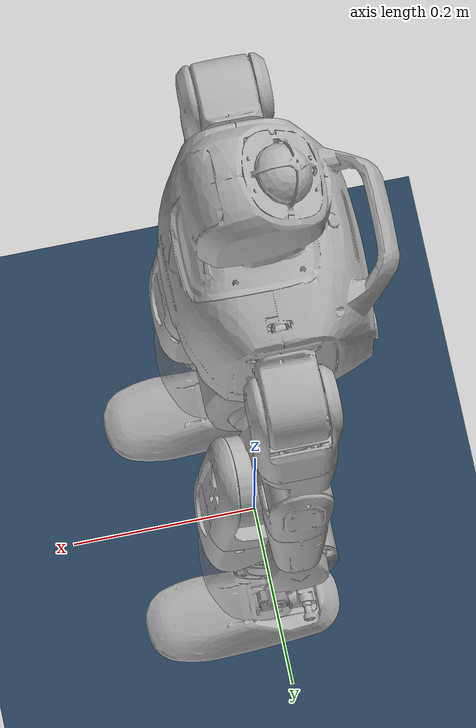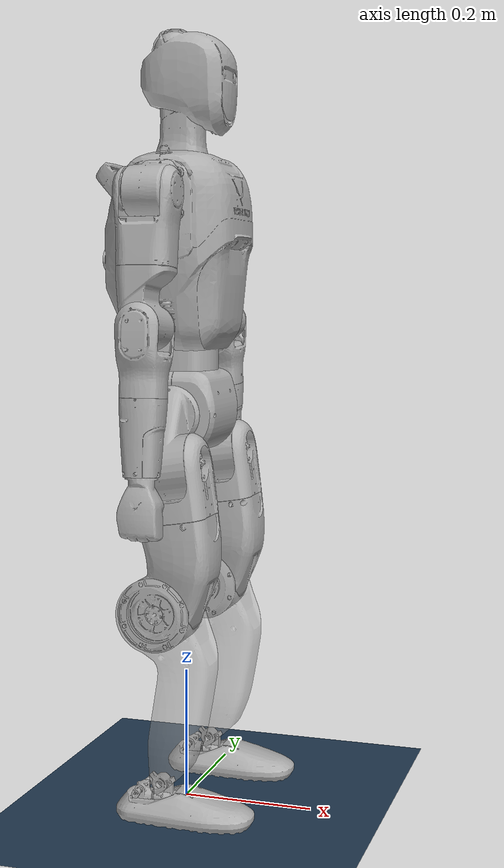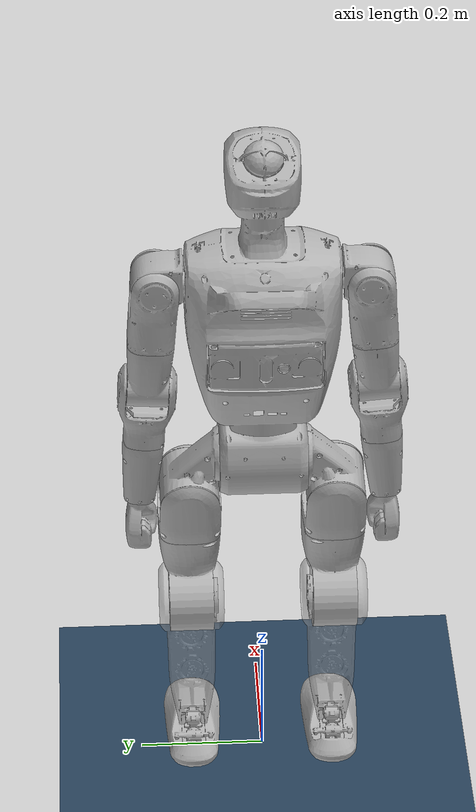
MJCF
<mujoco model="Mini_M1v3">
  <include file="Mini_M1v3.xml" />
  <statistic center="0.5 0.5 1.2" extent="1.0" />
  <visual>
    <headlight diffuse="0.6 0.6 0.6" ambient="0.3 0.3 0.3" specular="0 0 0" />
    <rgba haze="0.15 0.25 0.35 1" />
    <global azimuth="-130" elevation="-20" />
  </visual>
  <asset>
    <texture type="skybox" builtin="gradient" rgb1="0.3 0.5 0.7" rgb2="0 0 0" width="512" height="3072" />
    <texture type="2d" name="groundplane" builtin="checker" mark="edge" rgb1="0.2 0.3 0.4" rgb2="0.1 0.2 0.3" markrgb="0.8 0.8 0.8" width="300" height="300" />
    <material name="groundplane" texture="groundplane" texuniform="true" texrepeat="5 5" reflectance="0.2" />
  </asset>
  <worldbody>
    <light pos="0 0 1.5" dir="0 0 -1" directional="true" />
    <geom name="floor" size="0 0 0.05" type="plane" material="groundplane" friction="1.0 0.01 0.001" />
  </worldbody>
</mujoco>

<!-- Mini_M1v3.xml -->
<mujoco model="Mini_23dof_rev_1_0">
    <compiler angle="radian" meshdir="meshes_reduce_Lidar/" autolimits="true"/>

    <default>
        <default class="Mini1">
            <geom condim="1" contype="0" conaffinity="0"/>
            <joint damping="0.05" armature="0.01" frictionloss="0.2"/>

            <default class="hip">
                <default class="hip_pitch">
                    <joint axis="0 1 0" range="-2.674559 2.910495" actuatorfrcrange="-130 130" armature="0.063828" frictionloss="0.9"/>
                </default>
                <default class="hip_roll">
                    <joint axis="1 0 0" actuatorfrcrange="-132 132" armature="0.093956787" frictionloss="0.15"/>
                </default>
                <default class="hip_yaw">
                    <joint axis="0 0 1" range="-2.443461 2.443461" actuatorfrcrange="-70 70" armature="0.057648938" frictionloss="0.5"/>
                </default>
            </default>
            <default class="knee">
                <joint axis="0 1 0" range="-0.1919862 2.70526" actuatorfrcrange="-130 130" armature="0.063828" frictionloss="0.9"/>
            </default>
            <default class="ankle">
                <default class="ankle_pitch">
                    <joint axis="0 1 0" range="-0.8726646 0.5235988" actuatorfrcrange="-36 36" armature="0.023328" frictionloss="0.08"/>
                </default>
                <default class="ankle_roll">
                    <joint axis="1 0 0" range="-0.2617994 0.2617994" actuatorfrcrange="-36 36" armature="0.023328" frictionloss="0.08"/>
                </default>
            </default>
            <default class="waist">
                <joint axis="0 0 1" range="-2.792524 2.792524" actuatorfrcrange="-70 70" armature="0.057648938" frictionloss="0.5"/>
            </default>
            <default class="shoulder">
                <default class="shoulder_pitch">
                    <joint axis="0 1 0" range="-3.141593 2.356194" actuatorfrcrange="-36 36" armature="0.023328" frictionloss="0.08"/>
                </default>
                <default class="shoulder_roll">
                    <joint axis="1 0 0" actuatorfrcrange="-36 36" armature="0.023328" frictionloss="0.08"/>
                </default>
                <default class="shoulder_yaw">
                    <joint axis="0 0 1" range="-2.443461 2.443461" actuatorfrcrange="-36 36" armature="0.023328" frictionloss="0.08"/>
                </default>
            </default>
            <default class="elbow">
                <joint axis="0 1 0" range="-2.234021 1.570796" actuatorfrcrange="-36 36" armature="0.023328" frictionloss="0.08"/>
            </default>
            <default class="wrist">
                <default class="wrist_yaw">
                    <joint axis="0 0 1" range="-2.443461 2.443461" actuatorfrcrange="-36 36" armature="0.023328" frictionloss="0.08"/>
                </default>
            </default>

            <default class="visual">
                <geom group="2" type="mesh" density="0" material="silver" contype="0" conaffinity="0"/>
            </default>
            <default class="collision">
                <geom group="3" rgba=".2 .6 .2 .3" type="capsule" contype="1" conaffinity="1"/>
                <default class="foot_capsule">
                <geom type="capsule" size="0.007"/>
                </default>
            </default>
            <site group="5" rgba="1 0 0 1"/>
        </default>
    </default>

    <asset>
        <material name="silver" rgba="0.7 0.7 0.7 1"/>
        <material name="black" rgba="0.2 0.2 0.2 1"/>
        <material name="gold" rgba="1 0.84 0 1"/>
        <material name="red_staff" rgba="0.8 0 0 1"/>

        <mesh name="pelvis" file="pelvis_link.STL"/>

        <mesh name="left_hip_pitch_link" file="left_hip_pitch_link.STL" />
        <mesh name="left_hip_roll_link" file="left_hip_roll_link.STL" />
        <mesh name="left_hip_yaw_link" file="left_hip_yaw_link.STL" />
        <mesh name="left_knee_link" file="left_knee_link.STL" />
        <mesh name="left_ankle_pitch_link" file="left_ankle_pitch_link.STL" />
        <mesh name="left_ankle_roll_link" file="left_ankle_roll_link.STL" />

        <mesh name="right_hip_pitch_link" file="right_hip_pitch_link.STL" />
        <mesh name="right_hip_roll_link" file="right_hip_roll_link.STL" />
        <mesh name="right_hip_yaw_link" file="right_hip_yaw_link.STL" />
        <mesh name="right_knee_link" file="right_knee_link.STL" />
        <mesh name="right_ankle_pitch_link" file="right_ankle_pitch_link.STL" />
        <mesh name="right_ankle_roll_link" file="right_ankle_roll_link.STL" />

        <mesh name="torso_link" file="torso_link.STL" />
        <mesh name="left_shoulder_pitch_link" file="left_shoulder_pitch_link.STL" />
        <mesh name="left_shoulder_roll_link" file="left_shoulder_roll_link.STL" />
        <mesh name="left_shoulder_yaw_link" file="left_shoulder_yaw_link.STL" />
        <mesh name="left_elbow_link" file="left_elbow_link.STL" />
        <mesh name="left_wrist_yaw_link" file="left_wrist_yaw_link.STL"/>
        <mesh name="left_hand_link" file="left_hand_link.STL" />

        <mesh name="right_shoulder_pitch_link" file="right_shoulder_pitch_link.STL" />
        <mesh name="right_shoulder_roll_link" file="right_shoulder_roll_link.STL" />
        <mesh name="right_shoulder_yaw_link" file="right_shoulder_yaw_link.STL" />
        <mesh name="right_elbow_link" file="right_elbow_link.STL" />
        <mesh name="right_wrist_yaw_link" file="right_wrist_yaw_link.STL"/>
        <mesh name="right_hand_link" file="right_hand_link.STL" />

    </asset>

  <worldbody>
    <body name="pelvis_link" pos="0 0 0.672" childclass="Mini1" quat="1 0 0 0">
      <inertial pos="0.00197991 2.27e-06 -0.06287835" quat="0.9988767 -0.0004044356 -0.04738326 -0.0001535962" mass="3.005544" diaginertia="0.007994987 0.006372019 0.007607024" />
      <freejoint name="floating_base_joint" />
      <geom class="visual" mesh="pelvis" />
      <geom name="pelvis_collision" pos="0 0 -0.065" class="collision" type="sphere" size="0.065" />
      <site name="imu_in_pelvis" size="0.01" pos="0 0 -0.12053" />

      <body name="left_hip_pitch_link" pos="0 0.0625 -0.06475" quat="1 0 0 0">
        <inertial pos="0.01470366 0.0476278 -0.06264868" quat="0.1589684 0.9095972 0.3553892 -0.1451221" mass="1.61152939" diaginertia="0.003437672 0.00301867 0.001978658" />
        <joint name="left_hip_pitch_joint" pos="0 0 0" class="hip_pitch" />
        <geom class="visual" mesh="left_hip_pitch_link" />

        <body name="left_hip_roll_link" pos="0.011784 0.052504 -0.074055" quat="0.996889 0 -0.07881816 0">
          <inertial pos="0.00476834 -8.53e-06 -0.04522799" quat="0.8689032 -7.861597e-07 -0.494982 -5.525135e-05" mass="0.70342769" diaginertia="0.001522644 0.00168329 0.001222996" />
          <joint name="left_hip_roll_joint" pos="0 0 0" range="-0.6108652 2.268928" class="hip_roll" />
          <geom class="visual" mesh="left_hip_roll_link" />
          <geom name="left_hip_collision" class="collision" size="0.05" fromto="0.00 0.0 0.0 0.00 0.0 -0.11" />

          <body name="left_hip_yaw_link" pos="0 0 -0.085148" quat="1 0 0 0">
            <inertial pos="-0.02157799 -0.00083568 -0.0769782" quat="0.7521142 -0.1426161 -0.1833375 0.6167432" mass="2.68034203" diaginertia="0.01174214 0.01101729 0.003841335" />
            <joint name="left_hip_yaw_joint" pos="0 0 0" class="hip_yaw"/>
            <geom class="visual" mesh="left_hip_yaw_link" />
            <geom name="left_thigh_collision" pos="0.015 0.0 -0.12" euler="0 0.57 0" class="collision" type="box" size="0.005 0.03 0.05" />

            <body name="left_knee_link" pos="-0.0451 0 -0.1233" quat="0.996889 0 0.07881816 0">
              <inertial pos="0.0258151 0.00045464 -0.12061859" quat="0.9987795 0.005430901 -0.0001620425 -0.0490926" mass="2.09107016" diaginertia="0.01272096 0.01248183 0.002515513" />
              <joint name="left_knee_joint" pos="0 0 0" class="knee" />
              <geom class="visual" mesh="left_knee_link" rgba="0.7 0.7 0.7 0.5" />
              <geom name="left_knee_collision" euler="1.5707 0 0" class="collision" type="cylinder" size="0.054 0.05" />
              <geom name="left_shin_collision" class="collision" size="0.042" fromto="0.035 0.0 -0.095 0.018 0.0 -0.18" />

              <body name="left_ankle_pitch_link" pos="0 0 -0.261" quat="1 0 0 0">
                <inertial pos="0.00198317 0.0 -0.00838611" quat="0.4473806 0.5475861 0.5475861 0.4473806" mass="0.12230048" diaginertia="2.696e-05 1.272488e-05 2.316512e-05" />
                <joint name="left_ankle_pitch_joint" pos="0 0 0" class="ankle_pitch"/>
                <geom class="visual" mesh="left_ankle_pitch_link" />

                <body name="left_ankle_roll_link" pos="0 0 -0.023" quat="1 0 0 0">
                  <inertial pos="0.01931061 0.0 -0.01037183" quat="7.382304e-07 -0.680966 -2.911727e-06 -0.732315" mass="0.86300763" diaginertia="0.002582852 0.00233125 0.000438728" />
                  <joint name="left_ankle_roll_joint" pos="0 0 0" class="ankle_roll"/>
                  <geom class="visual" mesh="left_ankle_roll_link" />

                  <geom name="left_foot1_collision" class="foot_capsule" fromto="-0.042 -0.03 -0.022 0.1 -0.035 -0.022" />
                  <geom name="left_foot2_collision" class="foot_capsule" fromto="-0.05 -0.027 -0.022 0.12 -0.027 -0.022" />
                  <geom name="left_foot3_collision" class="foot_capsule" fromto="-0.056 -0.018 -0.022 0.128 -0.018 -0.022" />
                  <geom name="left_foot4_collision" class="foot_capsule" fromto="-0.06 -0.009 -0.022 0.132 -0.009 -0.022" />
                  <geom name="left_foot5_collision" class="foot_capsule" fromto="-0.06 0.0 -0.022 0.132 0.0 -0.022" />
                  <geom name="left_foot6_collision" class="foot_capsule" fromto="-0.06 0.009 -0.022 0.131 0.009 -0.022" />
                  <geom name="left_foot7_collision" class="foot_capsule" fromto="-0.056 0.018 -0.022 0.128 0.018 -0.022" />
                  <geom name="left_foot8_collision" class="foot_capsule" fromto="-0.05 0.027 -0.022 0.12 0.027 -0.022" />
                  <geom name="left_foot9_collision" class="foot_capsule" fromto="-0.042 0.03 -0.022 0.1 0.035 -0.022" />

                </body>
              </body>
            </body>
          </body>
        </body>
      </body>

      <body name="right_hip_pitch_link" pos="0 -0.0625 -0.06475" quat="1 0 0 0">
        <inertial pos="0.01469242 -0.0476432 -0.06259392" quat="0.9093419 0.1575725 0.1456894 -0.3564306" mass="1.61230743" diaginertia="0.003441187 0.003024699 0.001977264" />
        <joint name="right_hip_pitch_joint" pos="0 0 0" class="hip_pitch"/>
        <geom class="visual" mesh="right_hip_pitch_link" />

        <body name="right_hip_roll_link" pos="0.011784 -0.052504 -0.074055" quat="0.996889 0 -0.07881816 0">
          <inertial pos="0.00476833 -8.53e-06 -0.04522799" quat="0.8689032 -7.861597e-07 -0.494982 -5.525135e-05" mass="0.70342769" diaginertia="0.001522644 0.00168329 0.001222996" />
          <joint name="right_hip_roll_joint" pos="0 0 0" range="-2.268928 0.5235988" class="hip_roll"/>
          <geom class="visual" mesh="right_hip_roll_link" />
          <geom name="right_hip_collision" class="collision" size="0.05" fromto="0.00 0.0 0.0 0.00 0.0 -0.11" />

          <body name="right_hip_yaw_link" pos="0 0 -0.085148" quat="1 0 0 0">
            <inertial pos="-0.02154921 0.00092456 -0.07699345" quat="0.6279133 -0.1805896 -0.1456576 0.7428972" mass="2.68019228" diaginertia="0.01173445 0.01102448 0.003839906" />
            <joint name="right_hip_yaw_joint" pos="0 0 0" class="hip_yaw"/>
            <geom class="visual" mesh="right_hip_yaw_link" />
            <geom name="right_thigh_collision" pos="0.015 0.0 -0.12" euler="0 0.57 0" class="collision" type="box" size="0.005 0.03 0.05" />

            <body name="right_knee_link" pos="-0.0451 0 -0.1233" quat="0.996889 0 0.07881816 0">
              <inertial pos="0.02581895 -0.000455 -0.12061461" quat="0.99875 -0.00537597 -0.0001870302 0.04969419" mass="2.09122431" diaginertia="0.01272193 0.01248257 0.002515846" />
              <joint name="right_knee_joint" pos="0 0 0" class="knee" />
              <geom class="visual" mesh="right_knee_link" rgba="0.7 0.7 0.7 0.5" />
              <geom name="right_knee_collision" euler="1.5707 0 0" class="collision" type="cylinder" size="0.054 0.05" />
              <geom name="right_shin_collision" class="collision" size="0.042" fromto="0.035 0.0 -0.095 0.018 0.0 -0.18" />

              <body name="right_ankle_pitch_link" pos="0 0 -0.261" quat="1 0 0 0">
                <inertial pos="0.00198317 0.0 -0.00838611" quat="0.4473806 0.5475861 0.5475861 0.4473806" mass="0.12230048" diaginertia="2.696e-05 1.272488e-05 2.316512e-05" />
                <joint name="right_ankle_pitch_joint" pos="0 0 0" class="ankle_pitch"/>
                <geom class="visual" mesh="right_ankle_pitch_link" />

                <body name="right_ankle_roll_link" pos="0 0 -0.023" quat="1 0 0 0">
                  <inertial pos="0.01931061 0.0 -0.01037183" quat="7.382304e-07 -0.680966 -2.911727e-06 -0.732315" mass="0.86300763" diaginertia="0.002582852 0.00233125 0.000438728" />
                  <joint name="right_ankle_roll_joint" pos="0 0 0" class="ankle_roll"/>
                  <geom class="visual" mesh="right_ankle_roll_link" />

                  <geom name="right_foot1_collision" class="foot_capsule" fromto="-0.042 -0.03 -0.022 0.1 -0.035 -0.022" />
                  <geom name="right_foot2_collision" class="foot_capsule" fromto="-0.05 -0.027 -0.022 0.12 -0.027 -0.022" />
                  <geom name="right_foot3_collision" class="foot_capsule" fromto="-0.056 -0.018 -0.022 0.128 -0.018 -0.022" />
                  <geom name="right_foot4_collision" class="foot_capsule" fromto="-0.06 -0.009 -0.022 0.132 -0.009 -0.022" />
                  <geom name="right_foot5_collision" class="foot_capsule" fromto="-0.06 0.0 -0.022 0.132 0.0 -0.022" />
                  <geom name="right_foot6_collision" class="foot_capsule" fromto="-0.06 0.009 -0.022 0.131 0.009 -0.022" />
                  <geom name="right_foot7_collision" class="foot_capsule" fromto="-0.056 0.018 -0.022 0.128 0.018 -0.022" />
                  <geom name="right_foot8_collision" class="foot_capsule" fromto="-0.05 0.027 -0.022 0.12 0.027 -0.022" />
                  <geom name="right_foot9_collision" class="foot_capsule" fromto="-0.042 0.03 -0.022 0.1 0.035 -0.022" />

                </body>
              </body>
            </body>
          </body>
        </body>
      </body>

      <body name="torso_link" pos="0 0 0" quat="1 0 0 0">
        <inertial pos="-0.00815639 0.00023756 0.20676222" quat="0.9997843 0.001252949 -0.02053224 -0.002855121" mass="11.01400726" diaginertia="0.1914043 0.1757814 0.05563343" />
        <joint name="waist_joint" pos="0 0 0" class="waist"/>
        <geom class="visual" mesh="torso_link" />
        <geom name="torso_collision" class="collision" type="box" size="0.065 0.1 0.15" pos="0 0 0.18" />
        <geom name="head_collision" class="collision" size="0.088" fromto="0.012 0.0 0.425 0.012 0.0 0.445" />
        <body name="left_shoulder_pitch_link" pos="0 0.1165 0.2595" quat="1 0 0 0">
          <inertial pos="0.00430601 0.04102807 0.0018977" quat="0.4673258 0.8719082 0.1438173 -0.02644431" mass="0.65960471" diaginertia="0.0003720705 0.0003396795 0.0002718" />
          <joint name="left_shoulder_pitch_joint" pos="0 0 0" class="shoulder_pitch"/>
          <geom class="visual" mesh="left_shoulder_pitch_link" />

          <body name="left_shoulder_roll_link" pos="0 0.0455 0" quat="0.999229 0.03925991 0 0">
            <inertial pos="0.00091943 -0.00039794 -0.06820202" quat="0.9995908 -0.007767931 -0.02315136 0.01489697" mass="0.82956693" diaginertia="0.001131505 0.001313174 0.0006359509" />
            <joint name="left_shoulder_roll_joint" pos="0 0 0" range="-0.20944 3.35103" class="shoulder_roll"/>
            <geom class="visual" mesh="left_shoulder_roll_link" />
            <geom name="left_shoulder_roll_collision" class="collision" type="cylinder" pos="-0.006 0 0" euler="0 1.57 0" size="0.0355 0.04" />

            <body name="left_shoulder_yaw_link" pos="0 0 -0.1055" quat="1 0 0 0">
              <inertial pos="-0.00196714 0.00444828 -0.05926182" quat="0.5280207 -0.005280622 0.053064 0.8475556" mass="0.87876071" diaginertia="0.001273688 0.001301285 0.0004010761" />
              <joint name="left_shoulder_yaw_joint" pos="0 0 0" class="shoulder_yaw"/>
              <geom class="visual" mesh="left_shoulder_yaw_link" />
              <geom name="left_shoulder_yaw_collision" class="collision" size="0.042" fromto="0.0 0.0 0.0 0.0 0.0 0.028" />

              <body name="left_elbow_link" pos="0 0 -0.08525" quat="1 0 0 0">
                <inertial pos="6.766e-05 -0.00032884 -0.06295271" quat="0.7061708 -0.02016335 0.02037782 0.707461" mass="0.67206478" diaginertia="0.0006715362 0.0008060405 0.0003833334" />
                <joint name="left_elbow_joint" pos="0 0 0" class="elbow"/>
                <geom class="visual" mesh="left_elbow_link" />
                <geom name="left_elbow_collision" pos="0 0 0" euler="1.57 0 0" class="collision" type="cylinder" size="0.032 0.04" />

                <body name="left_wrist_yaw_link" pos="0 0 -0.09975" quat="1 0 0 0">
                  <inertial pos="-0.00252001 -0.00028068 -0.0497133" quat="0.9442265 -0.003100077 -0.01356219 -0.3290027" mass="0.31924085" diaginertia="0.0004936568 0.0004930274 0.0002168958" />
                  <joint name="left_wrist_yaw_joint" pos="0 0 0" class="wrist_yaw"/>
                  <geom class="visual" mesh="left_wrist_yaw_link" />
                  <geom name="left_wrist_yaw_collision" class="collision" size="0.028" fromto="0.0 0.0 -0.092 0.0 0.0 0.035" />

                  <body name="left_hand_link" pos="0 0 -0.1075" quat="1 0 0 0">
                    <inertial pos="0.0010896 -0.0014795 -0.04984957" quat="0.6121535 0.0176858 -0.03037481 0.7899574" mass="0.20367604" diaginertia="0.0002032876 0.0001831736 6.852884e-05" />
                    <geom class="visual" mesh="left_hand_link" />
                    <geom name="left_hand_collision" class="collision" size="0.03" fromto="0.0 -0.005 -0.07 0.0 0.0 -0.03" />
                  </body>
                </body>
              </body>
            </body>
          </body>
        </body>

        <body name="right_shoulder_pitch_link" pos="0 -0.1165 0.2595" quat="1 0 0 0">
          <inertial pos="0.00430677 -0.04102735 0.00189828" quat="0.8718061 0.4672653 0.02717745 -0.1444948" mass="0.6596084" diaginertia="0.0003720848 0.0003396536 0.0002718216" />
          <joint name="right_shoulder_pitch_joint" pos="0 0 0" class="shoulder_pitch"/>
          <geom class="visual" mesh="right_shoulder_pitch_link" />

          <body name="right_shoulder_roll_link" pos="0 -0.0455 0" quat="0.999229 -0.03925991 0 0">
            <inertial pos="0.00082045 0.00032827 -0.06820069" quat="0.9996465 0.006815268 -0.02098451 -0.01483603" mass="0.82957118" diaginertia="0.001131303 0.001313228 0.0006363798" />
            <joint name="right_shoulder_roll_joint" pos="0 0 0" range="-3.35103 0.20944" class="shoulder_roll"/>
            <geom class="visual" mesh="right_shoulder_roll_link" />
            <geom name="right_shoulder_roll_collision" class="collision" type="cylinder" pos="-0.006 0 0" euler="0 1.57 0" size="0.0355 0.04" />

            <body name="right_shoulder_yaw_link" pos="0 0 -0.1055" quat="1 0 0 0">
              <inertial pos="-0.00196515 -0.00444783 -0.0592575" quat="0.8480405 0.05299815 -0.005301828 0.527248" mass="0.87856819" diaginertia="0.001274522 0.001302259 0.0004010593" />
              <joint name="right_shoulder_yaw_joint" pos="0 0 0" class="shoulder_yaw"/>
              <geom class="visual" mesh="right_shoulder_yaw_link" />
              <geom name="right_shoulder_yaw_collision" class="collision" size="0.042" fromto="0.0 0.0 0.0 0.0 0.0 0.028" />

              <body name="right_elbow_link" pos="0 0 -0.08525" quat="1 0 0 0">
                <inertial pos="3.891e-05 0.0003554 -0.0629972" quat="0.7084886 0.01907791 -0.0197978 0.7051865" mass="0.67292131" diaginertia="0.0006729289 0.0008074735 0.0003842477" />
                <joint name="right_elbow_joint" pos="0 0 0" class="elbow"/>
                <geom class="visual" mesh="right_elbow_link" />
                <geom name="right_elbow_collision" pos="0 0 0" euler="1.57 0 0" class="collision" type="cylinder" size="0.032 0.04" />

                <body name="right_wrist_yaw_link" pos="0 0 -0.09975" quat="1 0 0 0">
                  <inertial pos="-0.00252024 0.00028361 -0.05012422" quat="0.9477698 0.0027485 -0.01512474 0.3185844" mass="0.31924689" diaginertia="0.0004956656 0.0004949979 0.0002168465" />
                  <joint name="right_wrist_yaw_joint" pos="0 0 0" class="wrist_yaw"/>
                  <geom class="visual" mesh="right_wrist_yaw_link" />
                  <geom name="right_wrist_yaw_collision" class="collision" size="0.028" fromto="0.0 0.0 -0.092 0.0 0.0 0.035" />
                  <body name="right_hand_link" pos="0 0 -0.1075" quat="1 0 0 0">
                    <inertial pos="0.0010878 0.00147348 -0.04985937" quat="0.7900977 -0.03034839 0.01765404 0.6119746" mass="0.20392081" diaginertia="0.0002033211 0.0001831986 6.855027e-05" />
                    <geom class="visual" mesh="right_hand_link" />
                    <geom name="right_hand_collision" class="collision" size="0.03" fromto="0.0 0.005 -0.07 0.0 0.0 -0.03" />
                  </body>
                </body>
              </body>
            </body>
          </body>
        </body>

      </body>
    </body>
  </worldbody>

    <contact>
        <exclude body1="left_elbow_link" body2="left_shoulder_yaw_link"/>
        <exclude body1="right_elbow_link" body2="right_shoulder_yaw_link"/>
        <exclude body1="left_elbow_link" body2="left_wrist_yaw_link"/>
        <exclude body1="right_elbow_link" body2="right_wrist_yaw_link"/>
        <exclude body1="pelvis_link" body2="right_hip_roll_link"/>
        <exclude body1="pelvis_link" body2="left_hip_roll_link"/>
    </contact>
    <sensor>
        <gyro name="imu_ang_vel" site="imu_in_pelvis"/>
        <velocimeter name="imu_lin_vel" site="imu_in_pelvis"/>
        <accelerometer name="imu_lin_acc" site="imu_in_pelvis"/>
        <subtreeangmom name="root_angmom" body="pelvis_link"/>
    </sensor>
</mujoco>
